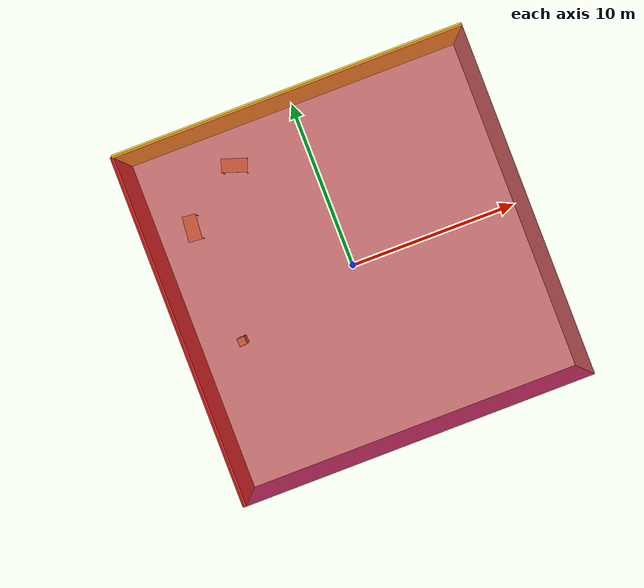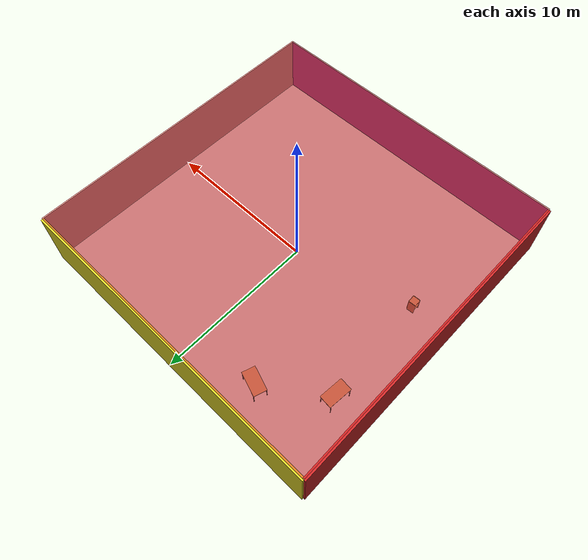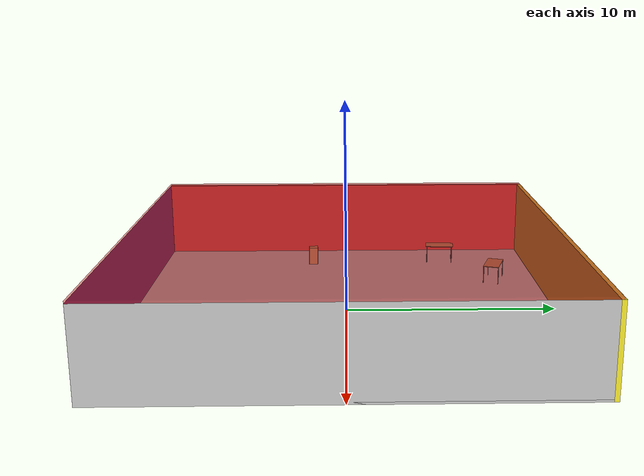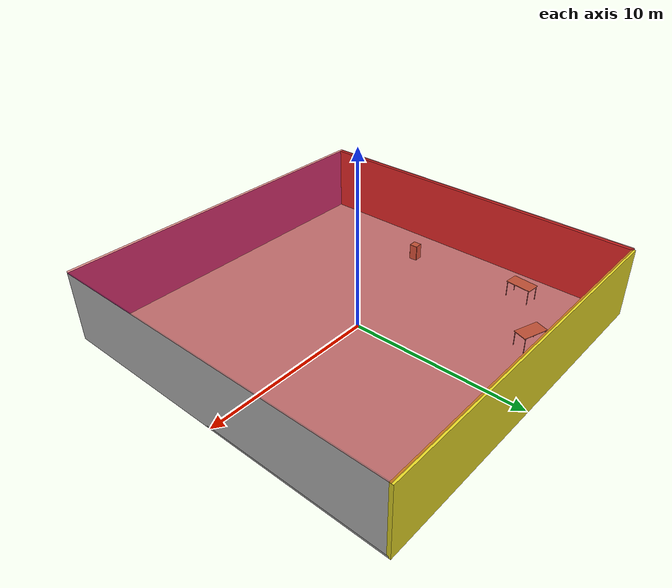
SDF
<sdf version="1.4">
 <world name="default">
  <physics type="ode">
   <max_step_size>0.001</max_step_size>
   <real_time_factor>1</real_time_factor>
   <real_time_update_rate>1000</real_time_update_rate>
   <gravity>0 0 -9.8</gravity>
  </physics>
  <scene><ambient>0.4 0.4 0.4 1</ambient><background>0.7 0.7 0.7 1</background><shadows>1</shadows></scene>
  <model name="Surrounding">
   <static>1</static>
   <link name="Ceiling">
    <collision name="Ceiling_Collision"><geometry><box><size>20 20 0.1</size></box></geometry></collision>
    <visual name="Ceiling_Visual">
     <geometry><box><size>20 20 0.1</size></box></geometry>
     <material>
      <script><uri>file://media/materials/scripts/gazebo.material</uri><name>Gazebo/RedTransparent</name></script>
     </material>
    </visual>
    <pose>0 0 4.05 0 0 0</pose>
   </link>
   <link name="Wall_South">
    <collision name="Wall_South_Collision">
     <geometry><box><size>20 0 4</size></box></geometry>
     <pose>0 0 2 0 -0 0</pose>
    </collision>
    <visual name="Wall_South_Visual">
     <pose>0 0 2 0 -0 0</pose>
     <geometry><box><size>20 0 4</size></box></geometry>
     <material>
      <script><uri>file://media/materials/scripts/gazebo.material</uri><name>Gazebo/PurpleGlow</name></script>
     </material>
    </visual>
    <velocity_decay><linear>0</linear><angular>0</angular></velocity_decay>
    <pose>0 -10 0 0 -0 0</pose>
   </link>
   <link name="Wall_East">
    <collision name="Wall_21_Collision">
     <geometry><box><size>20 0 4</size></box></geometry>
     <pose>0 0 2 0 -0 0</pose>
    </collision>
    <visual name="Wall_21_Visual">
     <pose>0 0 2 0 -0 0</pose>
     <geometry><box><size>20 0 4</size></box></geometry>
     <material>
      <script><uri>file://media/materials/scripts/gazebo.material</uri><name>Gazebo/LightOff</name></script>
     </material>
    </visual>
    <velocity_decay><linear>0</linear><angular>0</angular></velocity_decay>
    <pose>10 0 0 0 -0 1.5708</pose>
   </link>
   <link name="Wall_North">
    <collision name="Wall_22_Collision">
     <geometry><box><size>20 0.2 4</size></box></geometry>
     <pose>0 0 2 0 -0 0</pose>
    </collision>
    <visual name="Wall_22_Visual">
     <pose>0 0 2 0 -0 0</pose>
     <geometry><box><size>20 0.2 4</size></box></geometry>
     <material>
      <script><uri>file://media/materials/scripts/gazebo.material</uri><name>Gazebo/Yellow</name></script>
     </material>
    </visual>
    <velocity_decay><linear>0</linear><angular>0</angular></velocity_decay>
    <pose>0 10 0 0 -0 0</pose>
   </link>
   <link name="Wall_West">
    <collision name="Wall_23_Collision">
     <geometry><box><size>20 0.2 4</size></box></geometry>
     <pose>0 0 2 0 -0 0</pose>
    </collision>
    <visual name="Wall_23_Visual">
     <pose>0 0 2 0 -0 0</pose>
     <geometry><box><size>20 0.2 4</size></box></geometry>
     <material>
      <script><uri>file://media/materials/scripts/gazebo.material</uri><name>Gazebo/RedBright</name></script>
     </material>
    </visual>
    <velocity_decay><linear>0</linear><angular>0</angular></velocity_decay>
    <pose>-10 0 0 0 0 -1.5708</pose>
   </link>
   <link name="Ground_link">
    <collision name="collision">
     <pose>0 0 .05 0 -0 0</pose>
     <geometry><box><size>20 20 0.1</size></box></geometry>
    </collision>
    <visual name="visual">
     <pose>0 0 .05 0 -0 0</pose>
     <geometry><box><size>20 20 0.1</size></box></geometry>
     <material>
      <script><uri>file://media/materials/scripts/gazebo.material</uri><name>Gazebo/LightOff</name></script>
     </material>
    </visual>
   </link>
   <static>1</static>
  </model>
  <spherical_coordinates>
   <surface_model>EARTH_WGS84</surface_model>
   <latitude_deg>0</latitude_deg>
   <longitude_deg>0</longitude_deg>
   <elevation>0</elevation>
   <heading_deg>0</heading_deg>
  </spherical_coordinates>
  <light name="lightball_0" type="diffuse">
   <diffuse>0.8 0.8 0.8 1</diffuse>
   <specular>0.2 0.2 0.2 1</specular>
   <attenuation>
    <range>100</range>
    <constant>0.7</constant>
    <linear>0.01</linear>
    <quadratic>0.001</quadratic>
   </attenuation>
   <direction>-0.5 0.1 -0.9</direction>
   <pose>-9.59753876253 -0.0595384574786 1.01136915498 0 0 0</pose>
  </light>
  <light name="lightball_1" type="diffuse">
   <diffuse>0.8 0.8 0.8 1</diffuse>
   <specular>0.2 0.2 0.2 1</specular>
   <attenuation>
    <range>100</range>
    <constant>0.7</constant>
    <linear>0.01</linear>
    <quadratic>0.001</quadratic>
   </attenuation>
   <direction>-0.5 0.1 -0.9</direction>
   <pose>-2.03982862568 8.53257553263 3.37340272325 0 0 0</pose>
  </light>
  <light name="lightball_2" type="diffuse">
   <diffuse>0.8 0.8 0.8 1</diffuse>
   <specular>0.2 0.2 0.2 1</specular>
   <attenuation>
    <range>100</range>
    <constant>0.7</constant>
    <linear>0.01</linear>
    <quadratic>0.001</quadratic>
   </attenuation>
   <direction>-0.5 0.1 -0.9</direction>
   <pose>9.03745280013 -3.54925155217 3.61887203133 0 0 0</pose>
  </light>
  <include><uri>model://cabinet</uri><pose>-7.44375204597 -1.80513549419 0 0 0 0.0498555183159</pose></include>
  <include><uri>model://table</uri><pose>-7.80015998002 5.23908683556 0 0 0 1.47522741796</pose></include>
  <include><uri>model://table</uri><pose>-4.28568780907 7.72257918863 0 0 0 2.81069091912</pose></include>
 </world>
</sdf>

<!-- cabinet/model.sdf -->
<sdf version="1.5">
  <model name="cabinet">
    <static>true</static>
    <link name="cabinet_bottom_plate">
      <inertial>
        <pose>0 0 -1 0 0 0</pose>
        <inertia>
          <ixx>2.050000</ixx>
          <ixy>0</ixy>
          <ixz>0</ixz>
          <iyy>2.050000</iyy>
          <iyz>0</iyz>
          <izz>2.050000</izz>
        </inertia>
        <mass>25.000000</mass>
      </inertial>
      <collision name="cabinet_bottom_plate_geom">
        <pose>0 0 0.010000 0 0 0</pose>
        <geometry>
          <box>
            <size>0.450000 0.450000 0.020000</size>
          </box>
        </geometry>
      </collision>
      <visual name="cabinet_bottom_plate_geom_visual">
        <pose>0 0 0.010000 0 0 0</pose>
        <geometry>
          <box>
            <size>0.450000 0.450000 0.020000</size>
          </box>
        </geometry>
        <material>
          <script>
            <uri>model://media/materials/scripts/gazebo.material</uri>
            <name>Gazebo/Wood</name>
          </script>
        </material>
      </visual>
      <collision name="cabinet_bottom_plate_geom_cabinet_back_plate">
        <pose>0.235000 0 0.510000 0 0 0</pose>
        <geometry>
          <box>
            <size>0.020000 0.450000 1.020000</size>
          </box>
        </geometry>
      </collision>
      <visual name="cabinet_bottom_plate_geom_cabinet_back_plate_visual">
        <pose>0.235000 0 0.510000 0 0 0</pose>
        <geometry>
          <box>
            <size>0.020000 0.450000 1.020000</size>
          </box>
        </geometry>
        <material>
          <script>
            <uri>model://media/materials/scripts/gazebo.material</uri>
            <name>Gazebo/Wood</name>
          </script>
        </material>
      </visual>
      <collision name="cabinet_bottom_plate_geom_cabinet_left_plate">
        <pose>0 0.235000 0.510000 0 0 0</pose>
        <geometry>
          <box>
            <size>0.450000 0.020000 1.020000</size>
          </box>
        </geometry>
      </collision>
      <visual name="cabinet_bottom_plate_geom_cabinet_left_plate_visual">
        <pose>0 0.235000 0.510000 0 0 0</pose>
        <geometry>
          <box>
            <size>0.450000 0.020000 1.020000</size>
          </box>
        </geometry>
        <material>
          <script>
            <uri>model://media/materials/scripts/gazebo.material</uri>
            <name>Gazebo/Wood</name>
          </script>
        </material>
      </visual>
      <collision name="cabinet_bottom_plate_geom_cabinet_middle_plate">
        <pose>0 0 0.510000 0 0 0</pose>
        <geometry>
          <box>
            <size>0.450000 0.450000 0.020000</size>
          </box>
        </geometry>
      </collision>
      <visual name="cabinet_bottom_plate_geom_cabinet_middle_plate_visual">
        <pose>0 0 0.510000 0 0 0</pose>
        <geometry>
          <box>
            <size>0.450000 0.450000 0.020000</size>
          </box>
        </geometry>
        <material>
          <script>
            <uri>model://media/materials/scripts/gazebo.material</uri>
            <name>Gazebo/Wood</name>
          </script>
        </material>
      </visual>
      <collision name="cabinet_bottom_plate_geom_cabinet_right_plate">
        <pose>0 -0.235000 0.510000 0 0 0</pose>
        <geometry>
          <box>
            <size>0.450000 0.020000 1.020000</size>
          </box>
        </geometry>
      </collision>
      <visual name="cabinet_bottom_plate_geom_cabinet_right_plate_visual">
        <pose>0 -0.235000 0.510000 0 0 0</pose>
        <geometry>
          <box>
            <size>0.450000 0.020000 1.020000</size>
          </box>
        </geometry>
        <material>
          <script>
            <uri>model://media/materials/scripts/gazebo.material</uri>
            <name>Gazebo/Wood</name>
          </script>
        </material>
      </visual>
      <collision name="cabinet_bottom_plate_geom_cabinet_top_plate">
        <pose>0 0 1.010000 0 0 0</pose>
        <geometry>
          <box>
            <size>0.450000 0.450000 0.020000</size>
          </box>
        </geometry>
      </collision>
      <visual name="cabinet_bottom_plate_geom_cabinet_top_plate_visual">
        <pose>0 0 1.010000 0 0 0</pose>
        <geometry>
          <box>
            <size>0.450000 0.450000 0.020000</size>
          </box>
        </geometry>
        <material>
          <script>
            <uri>model://media/materials/scripts/gazebo.material</uri>
            <name>Gazebo/Wood</name>
          </script>
        </material>
      </visual>
    </link>
  </model>
</sdf>

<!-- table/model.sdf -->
<sdf version="1.5">
  <model name="table">
    <static>true</static>
    <link name="link">
      <collision name="surface">
        <pose>0 0 1.0 0 0 0</pose>
        <geometry>
          <box>
            <size>1.5 0.8 0.03</size>
          </box>
        </geometry>
        <surface>
          <friction>
            <ode>
              <mu>0.6</mu>
              <mu2>0.6</mu2>
            </ode>
          </friction>
        </surface>
      </collision>
      <visual name="visual1">
        <pose>0 0 1.0 0 0 0</pose>
        <geometry>
          <box>
            <size>1.5 0.8 0.03</size>
          </box>
        </geometry>
        <material>
          <script>
            <uri>model://media/materials/scripts/gazebo.material</uri>
            <name>Gazebo/Wood</name>
          </script>
        </material>
      </visual>
      <collision name="front_left_leg">
        <pose>0.68 0.38 0.5 0 0 0</pose>
        <geometry>
          <cylinder>
            <radius>0.02</radius>
            <length>1.0</length>
          </cylinder>
        </geometry>
      </collision>
      <visual name="front_left_leg">
        <pose>0.68 0.38 0.5 0 0 0</pose>
        <geometry>
          <cylinder>
            <radius>0.02</radius>
            <length>1.0</length>
          </cylinder>
        </geometry>
        <material>
          <script>
            <uri>model://media/materials/scripts/gazebo.material</uri>
            <name>Gazebo/Grey</name>
          </script>
        </material>
      </visual>
      <collision name="front_right_leg">
        <pose>0.68 -0.38 0.5 0 0 0</pose>
        <geometry>
          <cylinder>
            <radius>0.02</radius>
            <length>1.0</length>
          </cylinder>
        </geometry>
      </collision>
      <visual name="front_right_leg">
        <pose>0.68 -0.38 0.5 0 0 0</pose>
        <geometry>
          <cylinder>
            <radius>0.02</radius>
            <length>1.0</length>
          </cylinder>
        </geometry>
        <material>
          <script>
            <uri>model://media/materials/scripts/gazebo.material</uri>
            <name>Gazebo/Grey</name>
          </script>
        </material>
      </visual>
      <collision name="back_right_leg">
        <pose>-0.68 -0.38 0.5 0 0 0</pose>
        <geometry>
          <cylinder>
            <radius>0.02</radius>
            <length>1.0</length>
          </cylinder>
        </geometry>
      </collision>
      <visual name="back_right_leg">
        <pose>-0.68 -0.38 0.5 0 0 0</pose>
        <geometry>
          <cylinder>
            <radius>0.02</radius>
            <length>1.0</length>
          </cylinder>
        </geometry>
        <material>
          <script>
            <uri>model://media/materials/scripts/gazebo.material</uri>
            <name>Gazebo/Grey</name>
          </script>
        </material>
      </visual>
      <collision name="back_left_leg">
        <pose>-0.68 0.38 0.5 0 0 0</pose>
        <geometry>
          <cylinder>
            <radius>0.02</radius>
            <length>1.0</length>
          </cylinder>
        </geometry>
      </collision>
      <visual name="back_left_leg">
        <pose>-0.68 0.38 0.5 0 0 0</pose>
        <geometry>
          <cylinder>
            <radius>0.02</radius>
            <length>1.0</length>
          </cylinder>
        </geometry>
        <material>
          <script>
            <uri>model://media/materials/scripts/gazebo.material</uri>
            <name>Gazebo/Grey</name>
          </script>
        </material>
      </visual>
    </link>
  </model>
</sdf>
